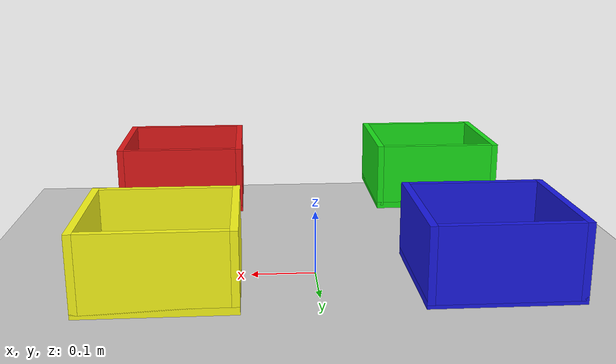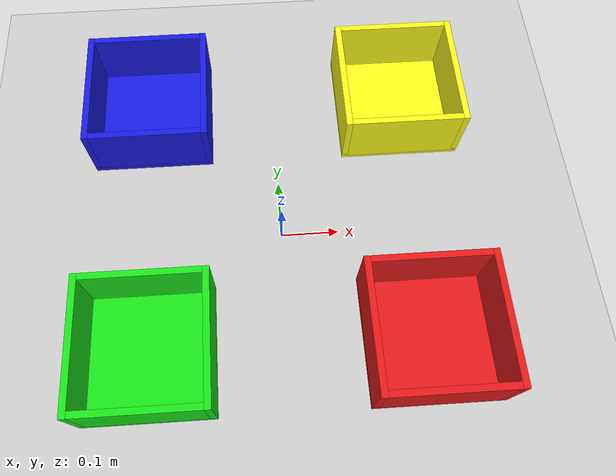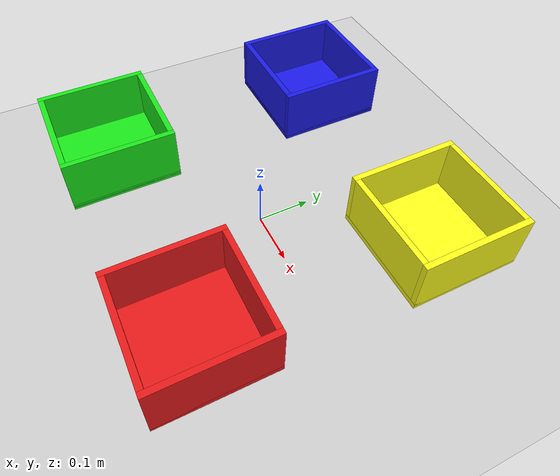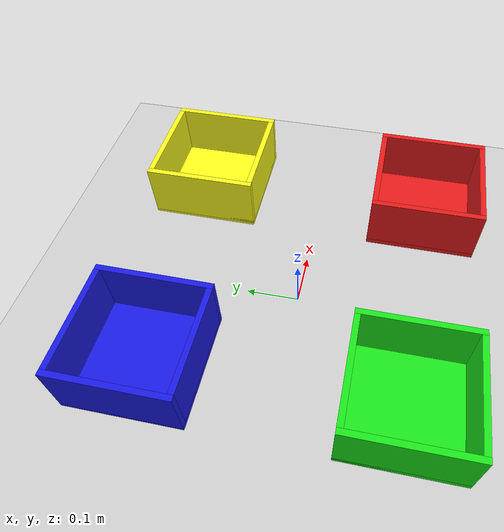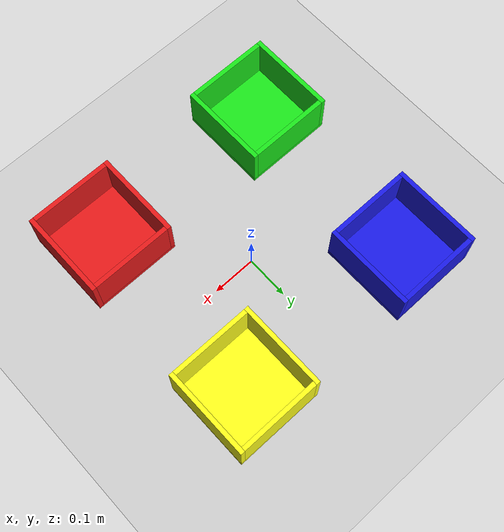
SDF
<?xml version="1.0" ?>
<sdf version="1.9">
  <world name="pick_and_place">

    <!-- Physics -->
    <plugin filename="gz-sim-physics-system" name="gz::sim::systems::Physics">
      <engine>
        <filename>gz-physics-dartsim-plugin</filename>
      </engine>
      <max_step_size>0.001</max_step_size>
      <real_time_factor>1.0</real_time_factor>
    </plugin>

    <!-- User commands (to spawn models) -->
    <plugin filename="gz-sim-user-commands-system"
            name="gz::sim::systems::UserCommands"/>

    <!-- Scene broadcaster -->
    <plugin filename="gz-sim-scene-broadcaster-system"
            name="gz::sim::systems::SceneBroadcaster"/>

    <!-- Sensors -->
    <plugin filename="gz-sim-sensors-system"
            name="gz::sim::systems::Sensors">
      <render_engine>ogre2</render_engine>
    </plugin>

    <!-- Lighting -->
    <light type="directional" name="sun">
      <cast_shadows>true</cast_shadows>
      <pose>0 0 10 0 0 0</pose>
      <diffuse>0.8 0.8 0.8 1</diffuse>
      <specular>0.2 0.2 0.2 1</specular>
      <attenuation>
        <range>1000</range>
        <constant>0.9</constant>
        <linear>0.01</linear>
        <quadratic>0.001</quadratic>
      </attenuation>
      <direction>-0.5 0.1 -0.9</direction>
    </light>

    <light type="point" name="overhead_light">
      <pose>0 0 2 0 0 0</pose>
      <diffuse>0.5 0.5 0.5 1</diffuse>
      <specular>0.1 0.1 0.1 1</specular>
      <attenuation>
        <range>20</range>
        <constant>0.5</constant>
        <linear>0.01</linear>
        <quadratic>0.001</quadratic>
      </attenuation>
      <cast_shadows>false</cast_shadows>
    </light>

    <!-- Ground plane -->
    <model name="ground_plane">
      <static>true</static>
      <link name="link">
        <collision name="collision">
          <geometry>
            <plane>
              <normal>0 0 1</normal>
              <size>10 10</size>
            </plane>
          </geometry>
        </collision>
        <visual name="visual">
          <geometry>
            <plane>
              <normal>0 0 1</normal>
              <size>10 10</size>
            </plane>
          </geometry>
          <material>
            <ambient>0.8 0.8 0.8 1</ambient>
            <diffuse>0.8 0.8 0.8 1</diffuse>
            <specular>0.8 0.8 0.8 1</specular>
          </material>
        </visual>
      </link>
    </model>

    <!-- Work table removed for ground-level robot setup -->

    <!-- Overhead camera -->
    <model name="overhead_camera">
      <static>true</static>
      <pose>1.5 0.0 1.5 0.0 0.0 1.570796</pose>
      <link name="link">
        <sensor name="camera" type="rgbd_camera">
          <camera>
            <horizontal_fov>1.397</horizontal_fov>
            <image>
              <width>640</width>
              <height>480</height>
              <format>R8G8B8</format>
            </image>
            <clip>
              <near>0.1</near>
              <far>100</far>
            </clip>
            <depth_camera>
              <clip>
                <near>0.1</near>
                <far>100</far>
              </clip>
            </depth_camera>
          </camera>
          <always_on>true</always_on>
          <update_rate>30</update_rate>
          <visualize>true</visualize>
          <topic>overhead_camera</topic>
        </sensor>
      </link>
    </model>

    <!-- Red bin (front-right, 45 degrees) -->
    <model name="red_bin">
      <static>true</static>
      <pose>0.212 -0.212 0.125 0 0 0</pose>
      <link name="link">
        <!-- Bottom -->
        <collision name="bottom">
          <pose>0 0 -0.05 0 0 0</pose>
          <geometry>
            <box>
              <size>0.2 0.2 0.01</size>
            </box>
          </geometry>
        </collision>
        <visual name="bottom">
          <pose>0 0 -0.05 0 0 0</pose>
          <geometry>
            <box>
              <size>0.2 0.2 0.01</size>
            </box>
          </geometry>
          <material>
            <ambient>0.8 0.0 0.0 1</ambient>
            <diffuse>0.9 0.1 0.1 1</diffuse>
          </material>
        </visual>

        <!-- Side walls (hollow bin) -->
        <collision name="wall_front">
          <pose>0.095 0 0 0 0 0</pose>
          <geometry>
            <box>
              <size>0.01 0.2 0.1</size>
            </box>
          </geometry>
        </collision>
        <visual name="wall_front">
          <pose>0.095 0 0 0 0 0</pose>
          <geometry>
            <box>
              <size>0.01 0.2 0.1</size>
            </box>
          </geometry>
          <material>
            <ambient>0.8 0.0 0.0 1</ambient>
            <diffuse>0.9 0.1 0.1 1</diffuse>
          </material>
        </visual>

        <collision name="wall_back">
          <pose>-0.095 0 0 0 0 0</pose>
          <geometry>
            <box>
              <size>0.01 0.2 0.1</size>
            </box>
          </geometry>
        </collision>
        <visual name="wall_back">
          <pose>-0.095 0 0 0 0 0</pose>
          <geometry>
            <box>
              <size>0.01 0.2 0.1</size>
            </box>
          </geometry>
          <material>
            <ambient>0.8 0.0 0.0 1</ambient>
            <diffuse>0.9 0.1 0.1 1</diffuse>
          </material>
        </visual>

        <collision name="wall_left">
          <pose>0 0.095 0 0 0 0</pose>
          <geometry>
            <box>
              <size>0.18 0.01 0.1</size>
            </box>
          </geometry>
        </collision>
        <visual name="wall_left">
          <pose>0 0.095 0 0 0 0</pose>
          <geometry>
            <box>
              <size>0.18 0.01 0.1</size>
            </box>
          </geometry>
          <material>
            <ambient>0.8 0.0 0.0 1</ambient>
            <diffuse>0.9 0.1 0.1 1</diffuse>
          </material>
        </visual>

        <collision name="wall_right">
          <pose>0 -0.095 0 0 0 0</pose>
          <geometry>
            <box>
              <size>0.18 0.01 0.1</size>
            </box>
          </geometry>
        </collision>
        <visual name="wall_right">
          <pose>0 -0.095 0 0 0 0</pose>
          <geometry>
            <box>
              <size>0.18 0.01 0.1</size>
            </box>
          </geometry>
          <material>
            <ambient>0.8 0.0 0.0 1</ambient>
            <diffuse>0.9 0.1 0.1 1</diffuse>
          </material>
        </visual>
      </link>
    </model>

    <!-- Green bin (back-right, 135 degrees) -->
    <model name="green_bin">
      <static>true</static>
      <pose>-0.212 -0.212 0.125 0 0 0</pose>
      <link name="link">
        <collision name="bottom">
          <pose>0 0 -0.05 0 0 0</pose>
          <geometry>
            <box>
              <size>0.2 0.2 0.01</size>
            </box>
          </geometry>
        </collision>
        <visual name="bottom">
          <pose>0 0 -0.05 0 0 0</pose>
          <geometry>
            <box>
              <size>0.2 0.2 0.01</size>
            </box>
          </geometry>
          <material>
            <ambient>0.0 0.8 0.0 1</ambient>
            <diffuse>0.1 0.9 0.1 1</diffuse>
          </material>
        </visual>

        <collision name="wall_front">
          <pose>0.095 0 0 0 0 0</pose>
          <geometry>
            <box>
              <size>0.01 0.2 0.1</size>
            </box>
          </geometry>
        </collision>
        <visual name="wall_front">
          <pose>0.095 0 0 0 0 0</pose>
          <geometry>
            <box>
              <size>0.01 0.2 0.1</size>
            </box>
          </geometry>
          <material>
            <ambient>0.0 0.8 0.0 1</ambient>
            <diffuse>0.1 0.9 0.1 1</diffuse>
          </material>
        </visual>

        <collision name="wall_back">
          <pose>-0.095 0 0 0 0 0</pose>
          <geometry>
            <box>
              <size>0.01 0.2 0.1</size>
            </box>
          </geometry>
        </collision>
        <visual name="wall_back">
          <pose>-0.095 0 0 0 0 0</pose>
          <geometry>
            <box>
              <size>0.01 0.2 0.1</size>
            </box>
          </geometry>
          <material>
            <ambient>0.0 0.8 0.0 1</ambient>
            <diffuse>0.1 0.9 0.1 1</diffuse>
          </material>
        </visual>

        <collision name="wall_left">
          <pose>0 0.095 0 0 0 0</pose>
          <geometry>
            <box>
              <size>0.18 0.01 0.1</size>
            </box>
          </geometry>
        </collision>
        <visual name="wall_left">
          <pose>0 0.095 0 0 0 0</pose>
          <geometry>
            <box>
              <size>0.18 0.01 0.1</size>
            </box>
          </geometry>
          <material>
            <ambient>0.0 0.8 0.0 1</ambient>
            <diffuse>0.1 0.9 0.1 1</diffuse>
          </material>
        </visual>

        <collision name="wall_right">
          <pose>0 -0.095 0 0 0 0</pose>
          <geometry>
            <box>
              <size>0.18 0.01 0.1</size>
            </box>
          </geometry>
        </collision>
        <visual name="wall_right">
          <pose>0 -0.095 0 0 0 0</pose>
          <geometry>
            <box>
              <size>0.18 0.01 0.1</size>
            </box>
          </geometry>
          <material>
            <ambient>0.0 0.8 0.0 1</ambient>
            <diffuse>0.1 0.9 0.1 1</diffuse>
          </material>
        </visual>
      </link>
    </model>

    <!-- Blue bin (back-left, 225 degrees) -->
    <model name="blue_bin">
      <static>true</static>
      <pose>-0.212 0.212 0.125 0 0 0</pose>
      <link name="link">
        <collision name="bottom">
          <pose>0 0 -0.05 0 0 0</pose>
          <geometry>
            <box>
              <size>0.2 0.2 0.01</size>
            </box>
          </geometry>
        </collision>
        <visual name="bottom">
          <pose>0 0 -0.05 0 0 0</pose>
          <geometry>
            <box>
              <size>0.2 0.2 0.01</size>
            </box>
          </geometry>
          <material>
            <ambient>0.0 0.0 0.8 1</ambient>
            <diffuse>0.1 0.1 0.9 1</diffuse>
          </material>
        </visual>

        <collision name="wall_front">
          <pose>0.095 0 0 0 0 0</pose>
          <geometry>
            <box>
              <size>0.01 0.2 0.1</size>
            </box>
          </geometry>
        </collision>
        <visual name="wall_front">
          <pose>0.095 0 0 0 0 0</pose>
          <geometry>
            <box>
              <size>0.01 0.2 0.1</size>
            </box>
          </geometry>
          <material>
            <ambient>0.0 0.0 0.8 1</ambient>
            <diffuse>0.1 0.1 0.9 1</diffuse>
          </material>
        </visual>

        <collision name="wall_back">
          <pose>-0.095 0 0 0 0 0</pose>
          <geometry>
            <box>
              <size>0.01 0.2 0.1</size>
            </box>
          </geometry>
        </collision>
        <visual name="wall_back">
          <pose>-0.095 0 0 0 0 0</pose>
          <geometry>
            <box>
              <size>0.01 0.2 0.1</size>
            </box>
          </geometry>
          <material>
            <ambient>0.0 0.0 0.8 1</ambient>
            <diffuse>0.1 0.1 0.9 1</diffuse>
          </material>
        </visual>

        <collision name="wall_left">
          <pose>0 0.095 0 0 0 0</pose>
          <geometry>
            <box>
              <size>0.18 0.01 0.1</size>
            </box>
          </geometry>
        </collision>
        <visual name="wall_left">
          <pose>0 0.095 0 0 0 0</pose>
          <geometry>
            <box>
              <size>0.18 0.01 0.1</size>
            </box>
          </geometry>
          <material>
            <ambient>0.0 0.0 0.8 1</ambient>
            <diffuse>0.1 0.1 0.9 1</diffuse>
          </material>
        </visual>

        <collision name="wall_right">
          <pose>0 -0.095 0 0 0 0</pose>
          <geometry>
            <box>
              <size>0.18 0.01 0.1</size>
            </box>
          </geometry>
        </collision>
        <visual name="wall_right">
          <pose>0 -0.095 0 0 0 0</pose>
          <geometry>
            <box>
              <size>0.18 0.01 0.1</size>
            </box>
          </geometry>
          <material>
            <ambient>0.0 0.0 0.8 1</ambient>
            <diffuse>0.1 0.1 0.9 1</diffuse>
          </material>
        </visual>
      </link>
    </model>

    <!-- Yellow bin (front-left, 315 degrees) -->
    <model name="yellow_bin">
      <static>true</static>
      <pose>0.212 0.212 0.125 0 0 0</pose>
      <link name="link">
        <collision name="bottom">
          <pose>0 0 -0.05 0 0 0</pose>
          <geometry>
            <box>
              <size>0.2 0.2 0.01</size>
            </box>
          </geometry>
        </collision>
        <visual name="bottom">
          <pose>0 0 -0.05 0 0 0</pose>
          <geometry>
            <box>
              <size>0.2 0.2 0.01</size>
            </box>
          </geometry>
          <material>
            <ambient>1.0 1.0 0.0 1</ambient>
            <diffuse>1.0 1.0 0.1 1</diffuse>
          </material>
        </visual>

        <collision name="wall_front">
          <pose>0.095 0 0 0 0 0</pose>
          <geometry>
            <box>
              <size>0.01 0.2 0.1</size>
            </box>
          </geometry>
        </collision>
        <visual name="wall_front">
          <pose>0.095 0 0 0 0 0</pose>
          <geometry>
            <box>
              <size>0.01 0.2 0.1</size>
            </box>
          </geometry>
          <material>
            <ambient>1.0 1.0 0.0 1</ambient>
            <diffuse>1.0 1.0 0.1 1</diffuse>
          </material>
        </visual>

        <collision name="wall_back">
          <pose>-0.095 0 0 0 0 0</pose>
          <geometry>
            <box>
              <size>0.01 0.2 0.1</size>
            </box>
          </geometry>
        </collision>
        <visual name="wall_back">
          <pose>-0.095 0 0 0 0 0</pose>
          <geometry>
            <box>
              <size>0.01 0.2 0.1</size>
            </box>
          </geometry>
          <material>
            <ambient>1.0 1.0 0.0 1</ambient>
            <diffuse>1.0 1.0 0.1 1</diffuse>
          </material>
        </visual>

        <collision name="wall_left">
          <pose>0 0.095 0 0 0 0</pose>
          <geometry>
            <box>
              <size>0.18 0.01 0.1</size>
            </box>
          </geometry>
        </collision>
        <visual name="wall_left">
          <pose>0 0.095 0 0 0 0</pose>
          <geometry>
            <box>
              <size>0.18 0.01 0.1</size>
            </box>
          </geometry>
          <material>
            <ambient>1.0 1.0 0.0 1</ambient>
            <diffuse>1.0 1.0 0.1 1</diffuse>
          </material>
        </visual>

        <collision name="wall_right">
          <pose>0 -0.095 0 0 0 0</pose>
          <geometry>
            <box>
              <size>0.18 0.01 0.1</size>
            </box>
          </geometry>
        </collision>
        <visual name="wall_right">
          <pose>0 -0.095 0 0 0 0</pose>
          <geometry>
            <box>
              <size>0.18 0.01 0.1</size>
            </box>
          </geometry>
          <material>
            <ambient>1.0 1.0 0.0 1</ambient>
            <diffuse>1.0 1.0 0.1 1</diffuse>
          </material>
        </visual>
      </link>
    </model>

  </world>
</sdf>
